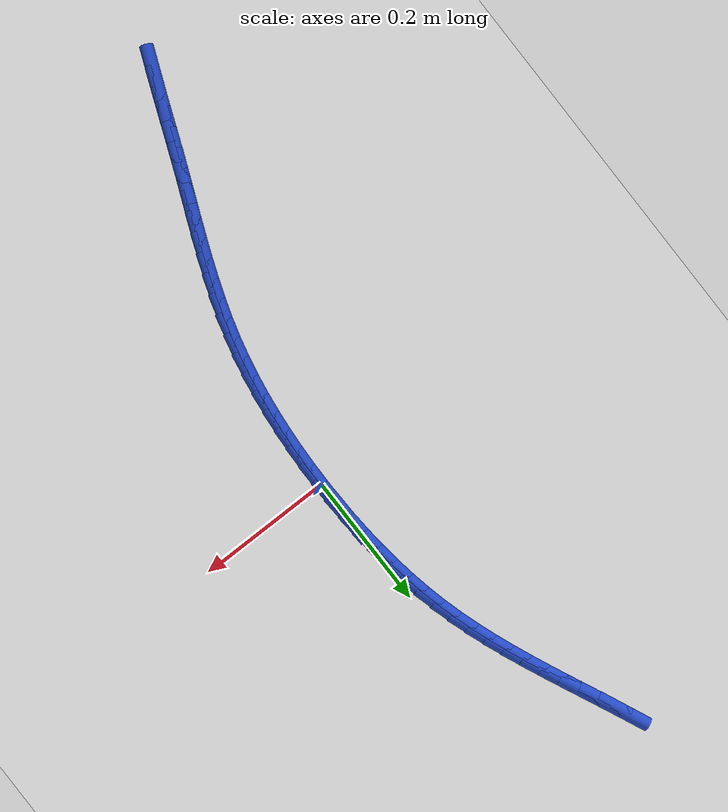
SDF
<sdf version="1.6">
 <world name="default">
  <model name="ground_plane">
   <static>1</static>
   <link name="link">
    <collision name="collision">
     <geometry><plane><normal>0 0 1</normal><size>100 100</size></plane></geometry>
     <surface><friction><ode><mu>100</mu><mu2>50</mu2></ode></friction></surface>
    </collision>
    <visual name="visual">
     <cast_shadows>0</cast_shadows>
     <geometry><plane><normal>0 0 1</normal><size>100 100</size></plane></geometry>
     <material>
      <script><uri>file://media/materials/scripts/gazebo.material</uri><name>Gazebo/WhiteGlow</name></script>
     </material>
    </visual>
   </link>
  </model>
  <model name="line">
   <link name="link_0">
    <pose>9.974659986866641e-18 1.3877787807814457e-17 0.01 0 1.57 -1.5580215021188153</pose>
    <collision name="collision">
     <geometry><cylinder><radius>0.01</radius><length>0.08</length></cylinder></geometry>
    </collision>
    <visual name="visual">
     <material>
      <script><name>Gazebo/Blue</name><uri>file://media/materials/scripts/gazebo.material</uri></script>
     </material>
     <geometry><cylinder><radius>0.01</radius><length>0.08</length></cylinder></geometry>
    </visual>
   </link>
   <link name="link_1">
    <pose>-0.00037993314938865845 0.029739154228859945 0.01 0 1.57 -1.5317703661067583</pose>
    <collision name="collision">
     <geometry><cylinder><radius>0.01</radius><length>0.08</length></cylinder></geometry>
    </collision>
    <visual name="visual">
     <material>
      <script><name>Gazebo/Blue</name><uri>file://media/materials/scripts/gazebo.material</uri></script>
     </material>
     <geometry><cylinder><radius>0.01</radius><length>0.08</length></cylinder></geometry>
    </visual>
   </link>
   <link name="link_2">
    <pose>-0.0015398807395258156 0.05944652422735148 0.01 0 1.57 -1.5037752928353882</pose>
    <collision name="collision">
     <geometry><cylinder><radius>0.01</radius><length>0.08</length></cylinder></geometry>
    </collision>
    <visual name="visual">
     <material>
      <script><name>Gazebo/Blue</name><uri>file://media/materials/scripts/gazebo.material</uri></script>
     </material>
     <geometry><cylinder><radius>0.01</radius><length>0.08</length></cylinder></geometry>
    </visual>
   </link>
   <link name="link_3">
    <pose>-0.0035278272089784113 0.08906363040889238 0.01 0 1.57 -1.4739139944669084</pose>
    <collision name="collision">
     <geometry><cylinder><radius>0.01</radius><length>0.08</length></cylinder></geometry>
    </collision>
    <visual name="visual">
     <material>
      <script><name>Gazebo/Blue</name><uri>file://media/materials/scripts/gazebo.material</uri></script>
     </material>
     <geometry><cylinder><radius>0.01</radius><length>0.08</length></cylinder></geometry>
    </visual>
   </link>
   <link name="link_4">
    <pose>-0.006391756996313396 0.11853199318690044 0.01 0 1.57 -1.4420607749533236</pose>
    <collision name="collision">
     <geometry><cylinder><radius>0.01</radius><length>0.08</length></cylinder></geometry>
    </collision>
    <visual name="visual">
     <material>
      <script><name>Gazebo/Blue</name><uri>file://media/materials/scripts/gazebo.material</uri></script>
     </material>
     <geometry><cylinder><radius>0.01</radius><length>0.08</length></cylinder></geometry>
    </visual>
   </link>
   <link name="link_5">
    <pose>-0.010179654540097727 0.1477931329747935 0.01 0 1.57 -1.4080889400098242</pose>
    <collision name="collision">
     <geometry><cylinder><radius>0.01</radius><length>0.08</length></cylinder></geometry>
    </collision>
    <visual name="visual">
     <material>
      <script><name>Gazebo/Blue</name><uri>file://media/materials/scripts/gazebo.material</uri></script>
     </material>
     <geometry><cylinder><radius>0.01</radius><length>0.08</length></cylinder></geometry>
    </visual>
   </link>
   <link name="link_6">
    <pose>-0.014939504278898352 0.1767885701859893 0.01 0 1.57 -1.3718741298951571</pose>
    <collision name="collision">
     <geometry><cylinder><radius>0.01</radius><length>0.08</length></cylinder></geometry>
    </collision>
    <visual name="visual">
     <material>
      <script><name>Gazebo/Blue</name><uri>file://media/materials/scripts/gazebo.material</uri></script>
     </material>
     <geometry><cylinder><radius>0.01</radius><length>0.08</length></cylinder></geometry>
    </visual>
   </link>
   <link name="link_7">
    <pose>-0.020719290651282217 0.20545982523390566 0.01 0 1.57 -1.3332987570523114</pose>
    <collision name="collision">
     <geometry><cylinder><radius>0.01</radius><length>0.08</length></cylinder></geometry>
    </collision>
    <visual name="visual">
     <material>
      <script><name>Gazebo/Blue</name><uri>file://media/materials/scripts/gazebo.material</uri></script>
     </material>
     <geometry><cylinder><radius>0.01</radius><length>0.08</length></cylinder></geometry>
    </visual>
   </link>
   <link name="link_8">
    <pose>-0.027566998095816288 0.23374841853196038 0.01 0 1.57 -1.292880538222184</pose>
    <collision name="collision">
     <geometry><cylinder><radius>0.01</radius><length>0.08</length></cylinder></geometry>
    </collision>
    <visual name="visual">
     <material>
      <script><name>Gazebo/Blue</name><uri>file://media/materials/scripts/gazebo.material</uri></script>
     </material>
     <geometry><cylinder><radius>0.01</radius><length>0.08</length></cylinder></geometry>
    </visual>
   </link>
   <link name="link_9">
    <pose>-0.03551507415191414 0.26160716528374955 0.01 0 1.57 -1.2552306841127459</pose>
    <collision name="collision">
     <geometry><cylinder><radius>0.01</radius><length>0.08</length></cylinder></geometry>
    </collision>
    <visual name="visual">
     <material>
      <script><name>Gazebo/Blue</name><uri>file://media/materials/scripts/gazebo.material</uri></script>
     </material>
     <geometry><cylinder><radius>0.01</radius><length>0.08</length></cylinder></geometry>
    </visual>
   </link>
   <link name="link_10">
    <pose>-0.04448165666233696 0.2890719799024542 0.01 0 1.57 -1.222621313202481</pose>
    <collision name="collision">
     <geometry><cylinder><radius>0.01</radius><length>0.08</length></cylinder></geometry>
    </collision>
    <visual name="visual">
     <material>
      <script><name>Gazebo/Blue</name><uri>file://media/materials/scripts/gazebo.material</uri></script>
     </material>
     <geometry><cylinder><radius>0.01</radius><length>0.08</length></cylinder></geometry>
    </visual>
   </link>
   <link name="link_11">
    <pose>-0.05433385140377356 0.3162158753543811 0.01 0 1.57 -1.1952288255123313</pose>
    <collision name="collision">
     <geometry><cylinder><radius>0.01</radius><length>0.08</length></cylinder></geometry>
    </collision>
    <visual name="visual">
     <material>
      <script><name>Gazebo/Blue</name><uri>file://media/materials/scripts/gazebo.material</uri></script>
     </material>
     <geometry><cylinder><radius>0.01</radius><length>0.08</length></cylinder></geometry>
    </visual>
   </link>
   <link name="link_12">
    <pose>-0.064938527730413 0.3431120364768459 0.01 0 1.57 -1.1731381027281085</pose>
    <collision name="collision">
     <geometry><cylinder><radius>0.01</radius><length>0.08</length></cylinder></geometry>
    </collision>
    <visual name="visual">
     <material>
      <script><name>Gazebo/Blue</name><uri>file://media/materials/scripts/gazebo.material</uri></script>
     </material>
     <geometry><cylinder><radius>0.01</radius><length>0.08</length></cylinder></geometry>
    </visual>
   </link>
   <link name="link_13">
    <pose>-0.07616255499644435 0.36983364810716435 0.01 0 1.57 -1.1563732066569763</pose>
    <collision name="collision">
     <geometry><cylinder><radius>0.01</radius><length>0.08</length></cylinder></geometry>
    </collision>
    <visual name="visual">
     <material>
      <script><name>Gazebo/Blue</name><uri>file://media/materials/scripts/gazebo.material</uri></script>
     </material>
     <geometry><cylinder><radius>0.01</radius><length>0.08</length></cylinder></geometry>
    </visual>
   </link>
   <link name="link_14">
    <pose>-0.08787280255605667 0.39645389508265183 0.01 0 1.57 -1.1449160118824349</pose>
    <collision name="collision">
     <geometry><cylinder><radius>0.01</radius><length>0.08</length></cylinder></geometry>
    </collision>
    <visual name="visual">
     <material>
      <script><name>Gazebo/Blue</name><uri>file://media/materials/scripts/gazebo.material</uri></script>
     </material>
     <geometry><cylinder><radius>0.01</radius><length>0.08</length></cylinder></geometry>
    </visual>
   </link>
   <link name="link_15">
    <pose>-0.09993613976343904 0.42304596224062396 0.01 0 1.57 -1.1387209045980469</pose>
    <collision name="collision">
     <geometry><cylinder><radius>0.01</radius><length>0.08</length></cylinder></geometry>
    </collision>
    <visual name="visual">
     <material>
      <script><name>Gazebo/Blue</name><uri>file://media/materials/scripts/gazebo.material</uri></script>
     </material>
     <geometry><cylinder><radius>0.01</radius><length>0.08</length></cylinder></geometry>
    </visual>
   </link>
   <link name="link_16">
    <pose>-0.1122194359727805 0.44968303441839635 0.01 0 1.57 -1.1377249940676806</pose>
    <collision name="collision">
     <geometry><cylinder><radius>0.01</radius><length>0.08</length></cylinder></geometry>
    </collision>
    <visual name="visual">
     <material>
      <script><name>Gazebo/Blue</name><uri>file://media/materials/scripts/gazebo.material</uri></script>
     </material>
     <geometry><cylinder><radius>0.01</radius><length>0.08</length></cylinder></geometry>
    </visual>
   </link>
   <link name="link_17">
    <pose>-0.12458956053827015 0.47643829645328467 0.01 0 1.57 -1.141853790209345</pose>
    <collision name="collision">
     <geometry><cylinder><radius>0.01</radius><length>0.08</length></cylinder></geometry>
    </collision>
    <visual name="visual">
     <material>
      <script><name>Gazebo/Blue</name><uri>file://media/materials/scripts/gazebo.material</uri></script>
     </material>
     <geometry><cylinder><radius>0.01</radius><length>0.08</length></cylinder></geometry>
    </visual>
   </link>
   <link name="link_18">
    <pose>-0.13691338281409704 0.5033849331826044 0.01 0 1.57 -1.1510225858339869</pose>
    <collision name="collision">
     <geometry><cylinder><radius>0.01</radius><length>0.08</length></cylinder></geometry>
    </collision>
    <visual name="visual">
     <material>
      <script><name>Gazebo/Blue</name><uri>file://media/materials/scripts/gazebo.material</uri></script>
     </material>
     <geometry><cylinder><radius>0.01</radius><length>0.08</length></cylinder></geometry>
    </visual>
   </link>
   <link name="link_239">
    <pose>-0.16622498459091098 -0.5916403328167185 0.01 0 1.57 1.1775427212771874</pose>
    <collision name="collision">
     <geometry><cylinder><radius>0.01</radius><length>0.08</length></cylinder></geometry>
    </collision>
    <visual name="visual">
     <material>
      <script><name>Gazebo/Blue</name><uri>file://media/materials/scripts/gazebo.material</uri></script>
     </material>
     <geometry><cylinder><radius>0.01</radius><length>0.08</length></cylinder></geometry>
    </visual>
   </link>
   <link name="link_240">
    <pose>-0.15483187093411652 -0.5641780059520679 0.01 0 1.57 1.1853006007029496</pose>
    <collision name="collision">
     <geometry><cylinder><radius>0.01</radius><length>0.08</length></cylinder></geometry>
    </collision>
    <visual name="visual">
     <material>
      <script><name>Gazebo/Blue</name><uri>file://media/materials/scripts/gazebo.material</uri></script>
     </material>
     <geometry><cylinder><radius>0.01</radius><length>0.08</length></cylinder></geometry>
    </visual>
   </link>
   <link name="link_241">
    <pose>-0.14363283336820956 -0.5365805249235631 0.01 0 1.57 1.1883017437704935</pose>
    <collision name="collision">
     <geometry><cylinder><radius>0.01</radius><length>0.08</length></cylinder></geometry>
    </collision>
    <visual name="visual">
     <material>
      <script><name>Gazebo/Blue</name><uri>file://media/materials/scripts/gazebo.material</uri></script>
     </material>
     <geometry><cylinder><radius>0.01</radius><length>0.08</length></cylinder></geometry>
    </visual>
   </link>
   <link name="link_242">
    <pose>-0.13250974274730798 -0.5089323392913891 0.01 0 1.57 1.186565075901244</pose>
    <collision name="collision">
     <geometry><cylinder><radius>0.01</radius><length>0.08</length></cylinder></geometry>
    </collision>
    <visual name="visual">
     <material>
      <script><name>Gazebo/Blue</name><uri>file://media/materials/scripts/gazebo.material</uri></script>
     </material>
     <geometry><cylinder><radius>0.01</radius><length>0.08</length></cylinder></geometry>
    </visual>
   </link>
   <link name="link_243">
    <pose>-0.12134446992552973 -0.48131789861573127 0.01 0 1.57 1.1801894670158668</pose>
    <collision name="collision">
     <geometry><cylinder><radius>0.01</radius><length>0.08</length></cylinder></geometry>
    </collision>
    <visual name="visual">
     <material>
      <script><name>Gazebo/Blue</name><uri>file://media/materials/scripts/gazebo.material</uri></script>
     </material>
     <geometry><cylinder><radius>0.01</radius><length>0.08</length></cylinder></geometry>
    </visual>
   </link>
   <link name="link_244">
    <pose>-0.11002185884071496 -0.4538201144737354 0.01 0 1.57 1.17357867820593</pose>
    <collision name="collision">
     <geometry><cylinder><radius>0.01</radius><length>0.08</length></cylinder></geometry>
    </collision>
    <visual name="visual">
     <material>
      <script><name>Gazebo/Blue</name><uri>file://media/materials/scripts/gazebo.material</uri></script>
     </material>
     <geometry><cylinder><radius>0.01</radius><length>0.08</length></cylinder></geometry>
    </visual>
   </link>
   <link name="link_245">
    <pose>-0.09854427846958724 -0.42646110246997143 0.01 0 1.57 1.1725531235259494</pose>
    <collision name="collision">
     <geometry><cylinder><radius>0.01</radius><length>0.08</length></cylinder></geometry>
    </collision>
    <visual name="visual">
     <material>
      <script><name>Gazebo/Blue</name><uri>file://media/materials/scripts/gazebo.material</uri></script>
     </material>
     <geometry><cylinder><radius>0.01</radius><length>0.08</length></cylinder></geometry>
    </visual>
   </link>
   <link name="link_246">
    <pose>-0.08706790264148638 -0.3991834146054554 0.01 0 1.57 1.1775500967871537</pose>
    <collision name="collision">
     <geometry><cylinder><radius>0.01</radius><length>0.08</length></cylinder></geometry>
    </collision>
    <visual name="visual">
     <material>
      <script><name>Gazebo/Blue</name><uri>file://media/materials/scripts/gazebo.material</uri></script>
     </material>
     <geometry><cylinder><radius>0.01</radius><length>0.08</length></cylinder></geometry>
    </visual>
   </link>
   <link name="link_247">
    <pose>-0.07575929926229506 -0.3719242260015296 0.01 0 1.57 1.1886221706578066</pose>
    <collision name="collision">
     <geometry><cylinder><radius>0.01</radius><length>0.08</length></cylinder></geometry>
    </collision>
    <visual name="visual">
     <material>
      <script><name>Gazebo/Blue</name><uri>file://media/materials/scripts/gazebo.material</uri></script>
     </material>
     <geometry><cylinder><radius>0.01</radius><length>0.08</length></cylinder></geometry>
    </visual>
   </link>
   <link name="link_248">
    <pose>-0.06478503623789628 -0.3446207117795367 0.01 0 1.57 1.2058238589935422</pose>
    <collision name="collision">
     <geometry><cylinder><radius>0.01</radius><length>0.08</length></cylinder></geometry>
    </collision>
    <visual name="visual">
     <material>
      <script><name>Gazebo/Blue</name><uri>file://media/materials/scripts/gazebo.material</uri></script>
     </material>
     <geometry><cylinder><radius>0.01</radius><length>0.08</length></cylinder></geometry>
    </visual>
   </link>
   <link name="link_249">
    <pose>-0.0543116814741731 -0.3172100470608195 0.01 0 1.57 1.2291992225654176</pose>
    <collision name="collision">
     <geometry><cylinder><radius>0.01</radius><length>0.08</length></cylinder></geometry>
    </collision>
    <visual name="visual">
     <material>
      <script><name>Gazebo/Blue</name><uri>file://media/materials/scripts/gazebo.material</uri></script>
     </material>
     <geometry><cylinder><radius>0.01</radius><length>0.08</length></cylinder></geometry>
    </visual>
   </link>
   <link name="link_250">
    <pose>-0.044505802877008505 -0.28962940696672085 0.01 0 1.57 1.2587621188136404</pose>
    <collision name="collision">
     <geometry><cylinder><radius>0.01</radius><length>0.08</length></cylinder></geometry>
    </collision>
    <visual name="visual">
     <material>
      <script><name>Gazebo/Blue</name><uri>file://media/materials/scripts/gazebo.material</uri></script>
     </material>
     <geometry><cylinder><radius>0.01</radius><length>0.08</length></cylinder></geometry>
    </visual>
   </link>
   <link name="link_251">
    <pose>-0.035533968352285554 -0.26181596661858353 0.01 0 1.57 1.294458707734806</pose>
    <collision name="collision">
     <geometry><cylinder><radius>0.01</radius><length>0.08</length></cylinder></geometry>
    </collision>
    <visual name="visual">
     <material>
      <script><name>Gazebo/Blue</name><uri>file://media/materials/scripts/gazebo.material</uri></script>
     </material>
     <geometry><cylinder><radius>0.01</radius><length>0.08</length></cylinder></geometry>
    </visual>
   </link>
   <link name="link_252">
    <pose>-0.027562464355545276 -0.23370703398271317 0.01 0 1.57 1.3339081309378824</pose>
    <collision name="collision">
     <geometry><cylinder><radius>0.01</radius><length>0.08</length></cylinder></geometry>
    </collision>
    <visual name="visual">
     <material>
      <script><name>Gazebo/Blue</name><uri>file://media/materials/scripts/gazebo.material</uri></script>
     </material>
     <geometry><cylinder><radius>0.01</radius><length>0.08</length></cylinder></geometry>
    </visual>
   </link>
   <link name="link_253">
    <pose>-0.020696825965237906 -0.20526859176226828 0.01 0 1.57 1.3719701164109122</pose>
    <collision name="collision">
     <geometry><cylinder><radius>0.01</radius><length>0.08</length></cylinder></geometry>
    </collision>
    <visual name="visual">
     <material>
      <script><name>Gazebo/Blue</name><uri>file://media/materials/scripts/gazebo.material</uri></script>
     </material>
     <geometry><cylinder><radius>0.01</radius><length>0.08</length></cylinder></geometry>
    </visual>
   </link>
   <link name="link_254">
    <pose>-0.0149065077124036 -0.17653085287335119 0.01 0 1.57 1.4079628851092352</pose>
    <collision name="collision">
     <geometry><cylinder><radius>0.01</radius><length>0.08</length></cylinder></geometry>
    </collision>
    <visual name="visual">
     <material>
      <script><name>Gazebo/Blue</name><uri>file://media/materials/scripts/gazebo.material</uri></script>
     </material>
     <geometry><cylinder><radius>0.01</radius><length>0.08</length></cylinder></geometry>
    </visual>
   </link>
   <link name="link_255">
    <pose>-0.010142468149143583 -0.1475327603605703 0.01 0 1.57 1.4419162192103956</pose>
    <collision name="collision">
     <geometry><cylinder><radius>0.01</radius><length>0.08</length></cylinder></geometry>
    </collision>
    <visual name="visual">
     <material>
      <script><name>Gazebo/Blue</name><uri>file://media/materials/scripts/gazebo.material</uri></script>
     </material>
     <geometry><cylinder><radius>0.01</radius><length>0.08</length></cylinder></geometry>
    </visual>
   </link>
   <link name="link_256">
    <pose>-0.0063556658275590525 -0.11831325726853385 0.01 0 1.57 1.4738759494698848</pose>
    <collision name="collision">
     <geometry><cylinder><radius>0.01</radius><length>0.08</length></cylinder></geometry>
    </collision>
    <visual name="visual">
     <material>
      <script><name>Gazebo/Blue</name><uri>file://media/materials/scripts/gazebo.material</uri></script>
     </material>
     <geometry><cylinder><radius>0.01</radius><length>0.08</length></cylinder></geometry>
    </visual>
   </link>
   <link name="link_257">
    <pose>-0.0034970592997512207 -0.08891128664185029 0.01 0 1.57 1.503899546365483</pose>
    <collision name="collision">
     <geometry><cylinder><radius>0.01</radius><length>0.08</length></cylinder></geometry>
    </collision>
    <visual name="visual">
     <material>
      <script><name>Gazebo/Blue</name><uri>file://media/materials/scripts/gazebo.material</uri></script>
     </material>
     <geometry><cylinder><radius>0.01</radius><length>0.08</length></cylinder></geometry>
    </visual>
   </link>
   <link name="link_258">
    <pose>-0.0015176071178212944 -0.05936579152512789 0.01 0 1.57 1.5320522738987625</pose>
    <collision name="collision">
     <geometry><cylinder><radius>0.01</radius><length>0.08</length></cylinder></geometry>
    </collision>
    <visual name="visual">
     <material>
      <script><name>Gazebo/Blue</name><uri>file://media/materials/scripts/gazebo.material</uri></script>
     </material>
     <geometry><cylinder><radius>0.01</radius><length>0.08</length></cylinder></geometry>
    </visual>
   </link>
   <link name="link_259">
    <pose>-0.000368267833870482 -0.02971571496297504 0.01 0 1.57 1.5584039282839826</pose>
    <collision name="collision">
     <geometry><cylinder><radius>0.01</radius><length>0.08</length></cylinder></geometry>
    </collision>
    <visual name="visual">
     <material>
      <script><name>Gazebo/Blue</name><uri>file://media/materials/scripts/gazebo.material</uri></script>
     </material>
     <geometry><cylinder><radius>0.01</radius><length>0.08</length></cylinder></geometry>
    </visual>
   </link>
   <link name="link_260">
    <pose>8.673617379884035e-18 -4.163336342344337e-17 0.01 0 1.57 -1.5585665166191656</pose>
    <collision name="collision">
     <geometry><cylinder><radius>0.01</radius><length>0.08</length></cylinder></geometry>
    </collision>
    <visual name="visual">
     <material>
      <script><name>Gazebo/Blue</name><uri>file://media/materials/scripts/gazebo.material</uri></script>
     </material>
     <geometry><cylinder><radius>0.01</radius><length>0.08</length></cylinder></geometry>
    </visual>
   </link>
   <link name="link_261">
    <pose>-0.0003637621683110332 0.02974241031918875 0.01 0 1.57 -1.5356024891677698</pose>
    <collision name="collision">
     <geometry><cylinder><radius>0.01</radius><length>0.08</length></cylinder></geometry>
    </collision>
    <visual name="visual">
     <material>
      <script><name>Gazebo/Blue</name><uri>file://media/materials/scripts/gazebo.material</uri></script>
     </material>
     <geometry><cylinder><radius>0.01</radius><length>0.08</length></cylinder></geometry>
    </visual>
   </link>
   <link name="link_262">
    <pose>-0.00141051289090481 0.05947257294998301 0.01 0 1.57 -1.5470837406372284</pose>
    <collision name="collision">
     <geometry><cylinder><radius>0.01</radius><length>0.08</length></cylinder></geometry>
    </collision>
    <visual name="visual">
     <material>
      <script><name>Gazebo/Blue</name><uri>file://media/materials/scripts/gazebo.material</uri></script>
     </material>
     <geometry><cylinder><radius>0.01</radius><length>0.08</length></cylinder></geometry>
    </visual>
   </link>
  </model>
 </world>
</sdf>
